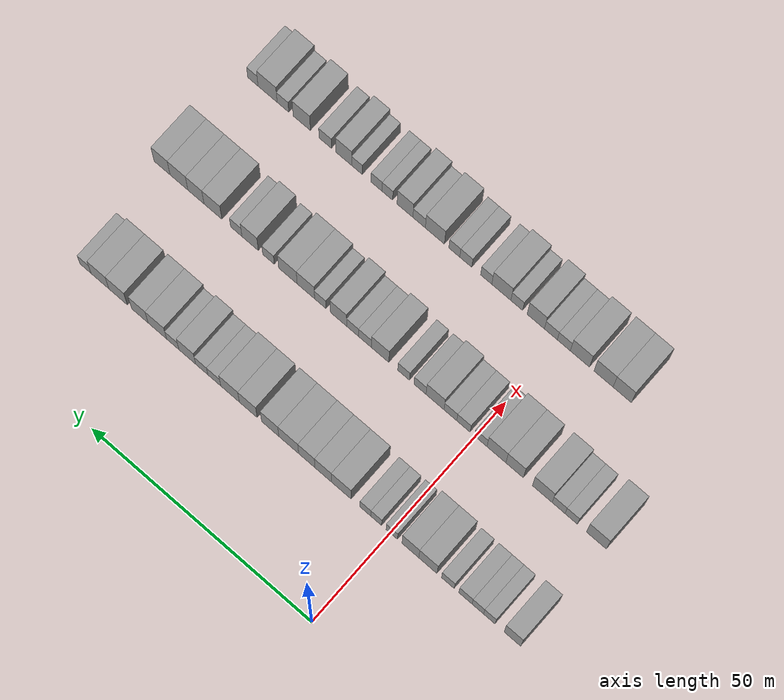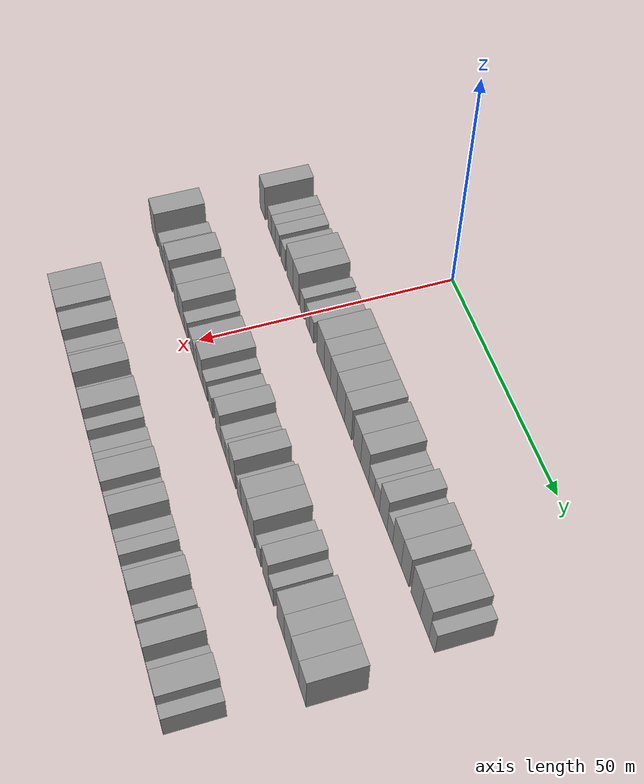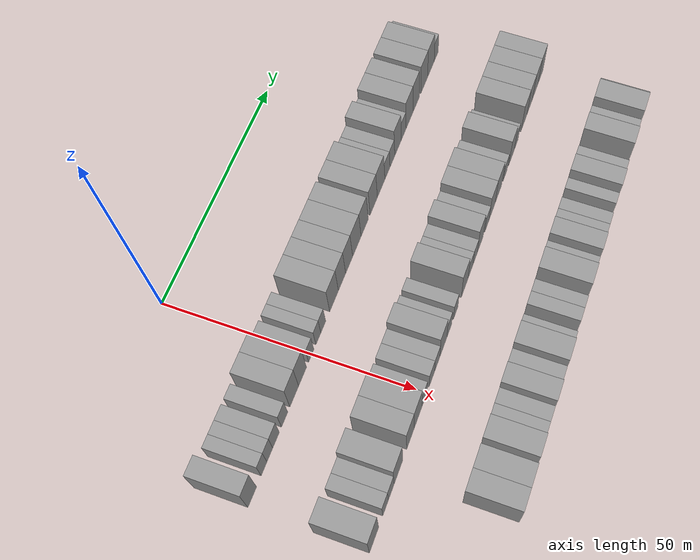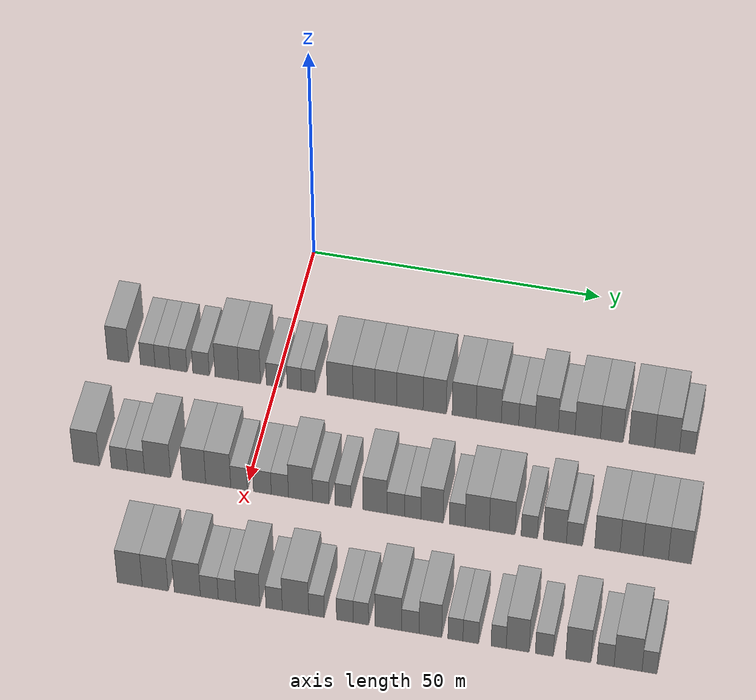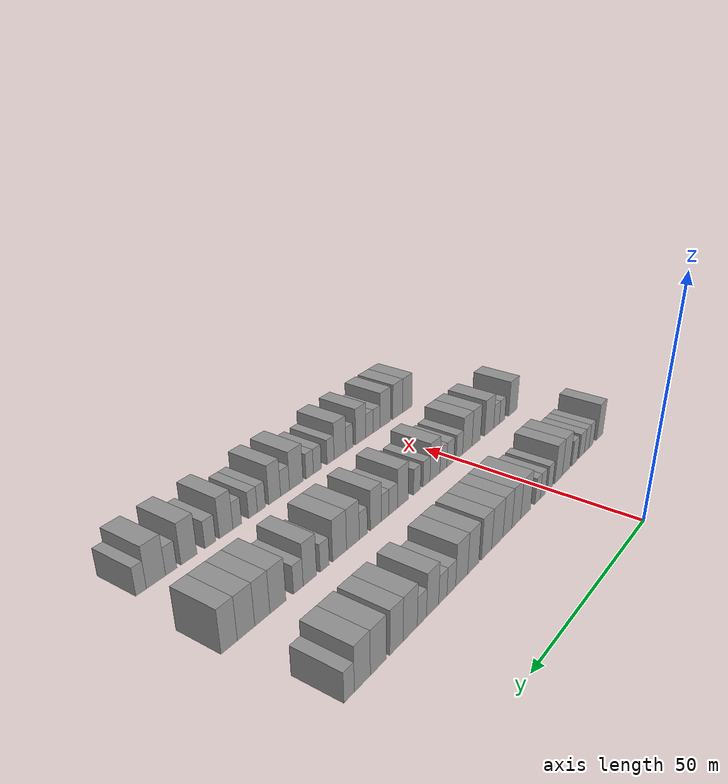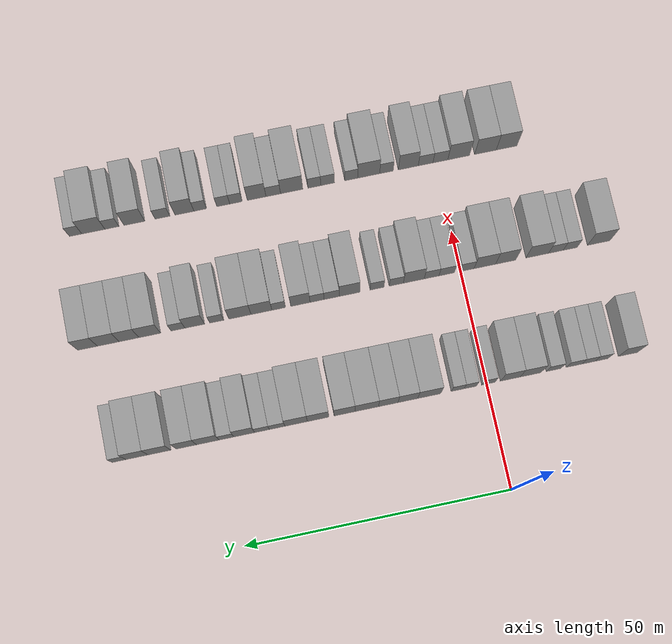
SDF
<sdf version="1.6">
 <world name="default">
  <model name="building_89">
   <static>1</static>
   <pose>25.0000 -27.1671 0 0.000000 0.000000 0.000000</pose>
   <link name="link">
    <pose>0 0 4.50 0 0 0</pose>
    <collision name="collision"><geometry><box><size>10.0000 3.6957 9.0000</size></box></geometry></collision>
    <visual name="visual">
     <cast_shadows>0</cast_shadows>
     <geometry><box><size>10.0000 3.6957 9.0000</size></box></geometry>
     <material>
      <script>
       <uri>model://grey_wall/materials/scripts</uri>
       <uri>model://grey_wall/materials/textures</uri>
       <name>vrc/grey_wall</name>
      </script>
     </material>
    </visual>
   </link>
  </model>
  <model name="building_90">
   <static>1</static>
   <pose>25.0000 -22.0524 0 0.000000 0.000000 0.000000</pose>
   <link name="link">
    <pose>0 0 3.00 0 0 0</pose>
    <collision name="collision"><geometry><box><size>10.0000 2.5336 6.0000</size></box></geometry></collision>
    <visual name="visual">
     <cast_shadows>0</cast_shadows>
     <geometry><box><size>10.0000 2.5336 6.0000</size></box></geometry>
     <material>
      <script>
       <uri>model://grey_wall/materials/scripts</uri>
       <uri>model://grey_wall/materials/textures</uri>
       <name>vrc/grey_wall</name>
      </script>
     </material>
    </visual>
   </link>
  </model>
  <model name="building_91">
   <static>1</static>
   <pose>25.0000 -19.4993 0 0.000000 0.000000 0.000000</pose>
   <link name="link">
    <pose>0 0 3.00 0 0 0</pose>
    <collision name="collision"><geometry><box><size>10.0000 2.5726 6.0000</size></box></geometry></collision>
    <visual name="visual">
     <cast_shadows>0</cast_shadows>
     <geometry><box><size>10.0000 2.5726 6.0000</size></box></geometry>
     <material>
      <script>
       <uri>model://grey_wall/materials/scripts</uri>
       <uri>model://grey_wall/materials/textures</uri>
       <name>vrc/grey_wall</name>
      </script>
     </material>
    </visual>
   </link>
  </model>
  <model name="building_92">
   <static>1</static>
   <pose>25.0000 -16.7391 0 0.000000 0.000000 0.000000</pose>
   <link name="link">
    <pose>0 0 3.00 0 0 0</pose>
    <collision name="collision"><geometry><box><size>10.0000 2.9478 6.0000</size></box></geometry></collision>
    <visual name="visual">
     <cast_shadows>0</cast_shadows>
     <geometry><box><size>10.0000 2.9478 6.0000</size></box></geometry>
     <material>
      <script>
       <uri>model://grey_wall/materials/scripts</uri>
       <uri>model://grey_wall/materials/textures</uri>
       <name>vrc/grey_wall</name>
      </script>
     </material>
    </visual>
   </link>
  </model>
  <model name="building_93">
   <static>1</static>
   <pose>25.0000 -12.8427 0 0.000000 0.000000 0.000000</pose>
   <link name="link">
    <pose>0 0 3.00 0 0 0</pose>
    <collision name="collision"><geometry><box><size>10.0000 2.8451 6.0000</size></box></geometry></collision>
    <visual name="visual">
     <cast_shadows>0</cast_shadows>
     <geometry><box><size>10.0000 2.8451 6.0000</size></box></geometry>
     <material>
      <script>
       <uri>model://grey_wall/materials/scripts</uri>
       <uri>model://grey_wall/materials/textures</uri>
       <name>vrc/grey_wall</name>
      </script>
     </material>
    </visual>
   </link>
  </model>
  <model name="building_94">
   <static>1</static>
   <pose>25.0000 -8.3882 0 0.000000 0.000000 0.000000</pose>
   <link name="link">
    <pose>0 0 4.50 0 0 0</pose>
    <collision name="collision"><geometry><box><size>10.0000 4.0640 9.0000</size></box></geometry></collision>
    <visual name="visual">
     <cast_shadows>0</cast_shadows>
     <geometry><box><size>10.0000 4.0640 9.0000</size></box></geometry>
     <material>
      <script>
       <uri>model://grey_wall/materials/scripts</uri>
       <uri>model://grey_wall/materials/textures</uri>
       <name>vrc/grey_wall</name>
      </script>
     </material>
    </visual>
   </link>
  </model>
  <model name="building_95">
   <static>1</static>
   <pose>25.0000 -4.4784 0 0.000000 0.000000 0.000000</pose>
   <link name="link">
    <pose>0 0 4.50 0 0 0</pose>
    <collision name="collision"><geometry><box><size>10.0000 3.7555 9.0000</size></box></geometry></collision>
    <visual name="visual">
     <cast_shadows>0</cast_shadows>
     <geometry><box><size>10.0000 3.7555 9.0000</size></box></geometry>
     <material>
      <script>
       <uri>model://grey_wall/materials/scripts</uri>
       <uri>model://grey_wall/materials/textures</uri>
       <name>vrc/grey_wall</name>
      </script>
     </material>
    </visual>
   </link>
  </model>
  <model name="building_96">
   <static>1</static>
   <pose>25.0000 -0.3151 0 0.000000 0.000000 0.000000</pose>
   <link name="link">
    <pose>0 0 3.00 0 0 0</pose>
    <collision name="collision"><geometry><box><size>10.0000 2.5711 6.0000</size></box></geometry></collision>
    <visual name="visual">
     <cast_shadows>0</cast_shadows>
     <geometry><box><size>10.0000 2.5711 6.0000</size></box></geometry>
     <material>
      <script>
       <uri>model://grey_wall/materials/scripts</uri>
       <uri>model://grey_wall/materials/textures</uri>
       <name>vrc/grey_wall</name>
      </script>
     </material>
    </visual>
   </link>
  </model>
  <model name="building_97">
   <static>1</static>
   <pose>25.0000 3.1766 0 0.000000 0.000000 0.000000</pose>
   <link name="link">
    <pose>0 0 3.00 0 0 0</pose>
    <collision name="collision"><geometry><box><size>10.0000 2.4122 6.0000</size></box></geometry></collision>
    <visual name="visual">
     <cast_shadows>0</cast_shadows>
     <geometry><box><size>10.0000 2.4122 6.0000</size></box></geometry>
     <material>
      <script>
       <uri>model://grey_wall/materials/scripts</uri>
       <uri>model://grey_wall/materials/textures</uri>
       <name>vrc/grey_wall</name>
      </script>
     </material>
    </visual>
   </link>
  </model>
  <model name="building_98">
   <static>1</static>
   <pose>25.0000 5.5967 0 0.000000 0.000000 0.000000</pose>
   <link name="link">
    <pose>0 0 3.00 0 0 0</pose>
    <collision name="collision"><geometry><box><size>10.0000 2.4280 6.0000</size></box></geometry></collision>
    <visual name="visual">
     <cast_shadows>0</cast_shadows>
     <geometry><box><size>10.0000 2.4280 6.0000</size></box></geometry>
     <material>
      <script>
       <uri>model://grey_wall/materials/scripts</uri>
       <uri>model://grey_wall/materials/textures</uri>
       <name>vrc/grey_wall</name>
      </script>
     </material>
    </visual>
   </link>
  </model>
  <model name="building_99">
   <static>1</static>
   <pose>25.0000 11.0182 0 0.000000 0.000000 0.000000</pose>
   <link name="link">
    <pose>0 0 4.50 0 0 0</pose>
    <collision name="collision"><geometry><box><size>10.0000 4.4150 9.0000</size></box></geometry></collision>
    <visual name="visual">
     <cast_shadows>0</cast_shadows>
     <geometry><box><size>10.0000 4.4150 9.0000</size></box></geometry>
     <material>
      <script>
       <uri>model://grey_wall/materials/scripts</uri>
       <uri>model://grey_wall/materials/textures</uri>
       <name>vrc/grey_wall</name>
      </script>
     </material>
    </visual>
   </link>
  </model>
  <model name="building_100">
   <static>1</static>
   <pose>25.0000 15.1032 0 0.000000 0.000000 0.000000</pose>
   <link name="link">
    <pose>0 0 4.50 0 0 0</pose>
    <collision name="collision"><geometry><box><size>10.0000 3.7549 9.0000</size></box></geometry></collision>
    <visual name="visual">
     <cast_shadows>0</cast_shadows>
     <geometry><box><size>10.0000 3.7549 9.0000</size></box></geometry>
     <material>
      <script>
       <uri>model://grey_wall/materials/scripts</uri>
       <uri>model://grey_wall/materials/textures</uri>
       <name>vrc/grey_wall</name>
      </script>
     </material>
    </visual>
   </link>
  </model>
  <model name="building_101">
   <static>1</static>
   <pose>25.0000 18.8308 0 0.000000 0.000000 0.000000</pose>
   <link name="link">
    <pose>0 0 4.50 0 0 0</pose>
    <collision name="collision"><geometry><box><size>10.0000 3.7003 9.0000</size></box></geometry></collision>
    <visual name="visual">
     <cast_shadows>0</cast_shadows>
     <geometry><box><size>10.0000 3.7003 9.0000</size></box></geometry>
     <material>
      <script>
       <uri>model://grey_wall/materials/scripts</uri>
       <uri>model://grey_wall/materials/textures</uri>
       <name>vrc/grey_wall</name>
      </script>
     </material>
    </visual>
   </link>
  </model>
  <model name="building_102">
   <static>1</static>
   <pose>25.0000 22.9225 0 0.000000 0.000000 0.000000</pose>
   <link name="link">
    <pose>0 0 4.50 0 0 0</pose>
    <collision name="collision"><geometry><box><size>10.0000 4.4832 9.0000</size></box></geometry></collision>
    <visual name="visual">
     <cast_shadows>0</cast_shadows>
     <geometry><box><size>10.0000 4.4832 9.0000</size></box></geometry>
     <material>
      <script>
       <uri>model://grey_wall/materials/scripts</uri>
       <uri>model://grey_wall/materials/textures</uri>
       <name>vrc/grey_wall</name>
      </script>
     </material>
    </visual>
   </link>
  </model>
  <model name="building_103">
   <static>1</static>
   <pose>25.0000 27.1284 0 0.000000 0.000000 0.000000</pose>
   <link name="link">
    <pose>0 0 4.50 0 0 0</pose>
    <collision name="collision"><geometry><box><size>10.0000 3.9285 9.0000</size></box></geometry></collision>
    <visual name="visual">
     <cast_shadows>0</cast_shadows>
     <geometry><box><size>10.0000 3.9285 9.0000</size></box></geometry>
     <material>
      <script>
       <uri>model://grey_wall/materials/scripts</uri>
       <uri>model://grey_wall/materials/textures</uri>
       <name>vrc/grey_wall</name>
      </script>
     </material>
    </visual>
   </link>
  </model>
  <model name="building_104">
   <static>1</static>
   <pose>25.0000 32.1212 0 0.000000 0.000000 0.000000</pose>
   <link name="link">
    <pose>0 0 4.50 0 0 0</pose>
    <collision name="collision"><geometry><box><size>10.0000 4.0571 9.0000</size></box></geometry></collision>
    <visual name="visual">
     <cast_shadows>0</cast_shadows>
     <geometry><box><size>10.0000 4.0571 9.0000</size></box></geometry>
     <material>
      <script>
       <uri>model://grey_wall/materials/scripts</uri>
       <uri>model://grey_wall/materials/textures</uri>
       <name>vrc/grey_wall</name>
      </script>
     </material>
    </visual>
   </link>
  </model>
  <model name="building_105">
   <static>1</static>
   <pose>25.0000 36.2793 0 0.000000 0.000000 0.000000</pose>
   <link name="link">
    <pose>0 0 4.50 0 0 0</pose>
    <collision name="collision"><geometry><box><size>10.0000 4.2591 9.0000</size></box></geometry></collision>
    <visual name="visual">
     <cast_shadows>0</cast_shadows>
     <geometry><box><size>10.0000 4.2591 9.0000</size></box></geometry>
     <material>
      <script>
       <uri>model://grey_wall/materials/scripts</uri>
       <uri>model://grey_wall/materials/textures</uri>
       <name>vrc/grey_wall</name>
      </script>
     </material>
    </visual>
   </link>
  </model>
  <model name="building_106">
   <static>1</static>
   <pose>25.0000 39.8754 0 0.000000 0.000000 0.000000</pose>
   <link name="link">
    <pose>0 0 3.00 0 0 0</pose>
    <collision name="collision"><geometry><box><size>10.0000 2.9330 6.0000</size></box></geometry></collision>
    <visual name="visual">
     <cast_shadows>0</cast_shadows>
     <geometry><box><size>10.0000 2.9330 6.0000</size></box></geometry>
     <material>
      <script>
       <uri>model://grey_wall/materials/scripts</uri>
       <uri>model://grey_wall/materials/textures</uri>
       <name>vrc/grey_wall</name>
      </script>
     </material>
    </visual>
   </link>
  </model>
  <model name="building_107">
   <static>1</static>
   <pose>25.0000 42.7324 0 0.000000 0.000000 0.000000</pose>
   <link name="link">
    <pose>0 0 3.00 0 0 0</pose>
    <collision name="collision"><geometry><box><size>10.0000 2.7810 6.0000</size></box></geometry></collision>
    <visual name="visual">
     <cast_shadows>0</cast_shadows>
     <geometry><box><size>10.0000 2.7810 6.0000</size></box></geometry>
     <material>
      <script>
       <uri>model://grey_wall/materials/scripts</uri>
       <uri>model://grey_wall/materials/textures</uri>
       <name>vrc/grey_wall</name>
      </script>
     </material>
    </visual>
   </link>
  </model>
  <model name="building_108">
   <static>1</static>
   <pose>25.0000 46.0612 0 0.000000 0.000000 0.000000</pose>
   <link name="link">
    <pose>0 0 4.50 0 0 0</pose>
    <collision name="collision"><geometry><box><size>10.0000 3.8766 9.0000</size></box></geometry></collision>
    <visual name="visual">
     <cast_shadows>0</cast_shadows>
     <geometry><box><size>10.0000 3.8766 9.0000</size></box></geometry>
     <material>
      <script>
       <uri>model://grey_wall/materials/scripts</uri>
       <uri>model://grey_wall/materials/textures</uri>
       <name>vrc/grey_wall</name>
      </script>
     </material>
    </visual>
   </link>
  </model>
  <model name="building_109">
   <static>1</static>
   <pose>25.0000 49.4147 0 0.000000 0.000000 0.000000</pose>
   <link name="link">
    <pose>0 0 3.00 0 0 0</pose>
    <collision name="collision"><geometry><box><size>10.0000 2.8305 6.0000</size></box></geometry></collision>
    <visual name="visual">
     <cast_shadows>0</cast_shadows>
     <geometry><box><size>10.0000 2.8305 6.0000</size></box></geometry>
     <material>
      <script>
       <uri>model://grey_wall/materials/scripts</uri>
       <uri>model://grey_wall/materials/textures</uri>
       <name>vrc/grey_wall</name>
      </script>
     </material>
    </visual>
   </link>
  </model>
  <model name="building_110">
   <static>1</static>
   <pose>25.0000 52.9545 0 0.000000 0.000000 0.000000</pose>
   <link name="link">
    <pose>0 0 4.50 0 0 0</pose>
    <collision name="collision"><geometry><box><size>10.0000 4.2490 9.0000</size></box></geometry></collision>
    <visual name="visual">
     <cast_shadows>0</cast_shadows>
     <geometry><box><size>10.0000 4.2490 9.0000</size></box></geometry>
     <material>
      <script>
       <uri>model://grey_wall/materials/scripts</uri>
       <uri>model://grey_wall/materials/textures</uri>
       <name>vrc/grey_wall</name>
      </script>
     </material>
    </visual>
   </link>
  </model>
  <model name="building_111">
   <static>1</static>
   <pose>25.0000 56.9843 0 0.000000 0.000000 0.000000</pose>
   <link name="link">
    <pose>0 0 4.50 0 0 0</pose>
    <collision name="collision"><geometry><box><size>10.0000 3.8107 9.0000</size></box></geometry></collision>
    <visual name="visual">
     <cast_shadows>0</cast_shadows>
     <geometry><box><size>10.0000 3.8107 9.0000</size></box></geometry>
     <material>
      <script>
       <uri>model://grey_wall/materials/scripts</uri>
       <uri>model://grey_wall/materials/textures</uri>
       <name>vrc/grey_wall</name>
      </script>
     </material>
    </visual>
   </link>
  </model>
  <model name="building_112">
   <static>1</static>
   <pose>25.0000 62.0280 0 0.000000 0.000000 0.000000</pose>
   <link name="link">
    <pose>0 0 4.50 0 0 0</pose>
    <collision name="collision"><geometry><box><size>10.0000 4.2765 9.0000</size></box></geometry></collision>
    <visual name="visual">
     <cast_shadows>0</cast_shadows>
     <geometry><box><size>10.0000 4.2765 9.0000</size></box></geometry>
     <material>
      <script>
       <uri>model://grey_wall/materials/scripts</uri>
       <uri>model://grey_wall/materials/textures</uri>
       <name>vrc/grey_wall</name>
      </script>
     </material>
    </visual>
   </link>
  </model>
  <model name="building_113">
   <static>1</static>
   <pose>25.0000 66.2353 0 0.000000 0.000000 0.000000</pose>
   <link name="link">
    <pose>0 0 4.50 0 0 0</pose>
    <collision name="collision"><geometry><box><size>10.0000 4.1381 9.0000</size></box></geometry></collision>
    <visual name="visual">
     <cast_shadows>0</cast_shadows>
     <geometry><box><size>10.0000 4.1381 9.0000</size></box></geometry>
     <material>
      <script>
       <uri>model://grey_wall/materials/scripts</uri>
       <uri>model://grey_wall/materials/textures</uri>
       <name>vrc/grey_wall</name>
      </script>
     </material>
    </visual>
   </link>
  </model>
  <model name="building_114">
   <static>1</static>
   <pose>25.0000 69.6113 0 0.000000 0.000000 0.000000</pose>
   <link name="link">
    <pose>0 0 3.00 0 0 0</pose>
    <collision name="collision"><geometry><box><size>10.0000 2.6140 6.0000</size></box></geometry></collision>
    <visual name="visual">
     <cast_shadows>0</cast_shadows>
     <geometry><box><size>10.0000 2.6140 6.0000</size></box></geometry>
     <material>
      <script>
       <uri>model://grey_wall/materials/scripts</uri>
       <uri>model://grey_wall/materials/textures</uri>
       <name>vrc/grey_wall</name>
      </script>
     </material>
    </visual>
   </link>
  </model>
  <model name="building_278">
   <static>1</static>
   <pose>47.0000 -26.9733 0 0.000000 0.000000 0.000000</pose>
   <link name="link">
    <pose>0 0 4.50 0 0 0</pose>
    <collision name="collision"><geometry><box><size>10.0000 4.4343 9.0000</size></box></geometry></collision>
    <visual name="visual">
     <cast_shadows>0</cast_shadows>
     <geometry><box><size>10.0000 4.4343 9.0000</size></box></geometry>
     <material>
      <script>
       <uri>model://grey_wall/materials/scripts</uri>
       <uri>model://grey_wall/materials/textures</uri>
       <name>vrc/grey_wall</name>
      </script>
     </material>
    </visual>
   </link>
  </model>
  <model name="building_279">
   <static>1</static>
   <pose>47.0000 -21.3816 0 0.000000 0.000000 0.000000</pose>
   <link name="link">
    <pose>0 0 3.00 0 0 0</pose>
    <collision name="collision"><geometry><box><size>10.0000 2.7491 6.0000</size></box></geometry></collision>
    <visual name="visual">
     <cast_shadows>0</cast_shadows>
     <geometry><box><size>10.0000 2.7491 6.0000</size></box></geometry>
     <material>
      <script>
       <uri>model://grey_wall/materials/scripts</uri>
       <uri>model://grey_wall/materials/textures</uri>
       <name>vrc/grey_wall</name>
      </script>
     </material>
    </visual>
   </link>
  </model>
  <model name="building_280">
   <static>1</static>
   <pose>47.0000 -18.5698 0 0.000000 0.000000 0.000000</pose>
   <link name="link">
    <pose>0 0 3.00 0 0 0</pose>
    <collision name="collision"><geometry><box><size>10.0000 2.8746 6.0000</size></box></geometry></collision>
    <visual name="visual">
     <cast_shadows>0</cast_shadows>
     <geometry><box><size>10.0000 2.8746 6.0000</size></box></geometry>
     <material>
      <script>
       <uri>model://grey_wall/materials/scripts</uri>
       <uri>model://grey_wall/materials/textures</uri>
       <name>vrc/grey_wall</name>
      </script>
     </material>
    </visual>
   </link>
  </model>
  <model name="building_281">
   <static>1</static>
   <pose>47.0000 -14.9284 0 0.000000 0.000000 0.000000</pose>
   <link name="link">
    <pose>0 0 4.50 0 0 0</pose>
    <collision name="collision"><geometry><box><size>10.0000 4.4082 9.0000</size></box></geometry></collision>
    <visual name="visual">
     <cast_shadows>0</cast_shadows>
     <geometry><box><size>10.0000 4.4082 9.0000</size></box></geometry>
     <material>
      <script>
       <uri>model://grey_wall/materials/scripts</uri>
       <uri>model://grey_wall/materials/textures</uri>
       <name>vrc/grey_wall</name>
      </script>
     </material>
    </visual>
   </link>
  </model>
  <model name="building_282">
   <static>1</static>
   <pose>47.0000 -8.7660 0 0.000000 0.000000 0.000000</pose>
   <link name="link">
    <pose>0 0 4.50 0 0 0</pose>
    <collision name="collision"><geometry><box><size>10.0000 3.9165 9.0000</size></box></geometry></collision>
    <visual name="visual">
     <cast_shadows>0</cast_shadows>
     <geometry><box><size>10.0000 3.9165 9.0000</size></box></geometry>
     <material>
      <script>
       <uri>model://grey_wall/materials/scripts</uri>
       <uri>model://grey_wall/materials/textures</uri>
       <name>vrc/grey_wall</name>
      </script>
     </material>
    </visual>
   </link>
  </model>
  <model name="building_283">
   <static>1</static>
   <pose>47.0000 -4.6960 0 0.000000 0.000000 0.000000</pose>
   <link name="link">
    <pose>0 0 4.50 0 0 0</pose>
    <collision name="collision"><geometry><box><size>10.0000 4.2235 9.0000</size></box></geometry></collision>
    <visual name="visual">
     <cast_shadows>0</cast_shadows>
     <geometry><box><size>10.0000 4.2235 9.0000</size></box></geometry>
     <material>
      <script>
       <uri>model://grey_wall/materials/scripts</uri>
       <uri>model://grey_wall/materials/textures</uri>
       <name>vrc/grey_wall</name>
      </script>
     </material>
    </visual>
   </link>
  </model>
  <model name="building_284">
   <static>1</static>
   <pose>47.0000 -1.1816 0 0.000000 0.000000 0.000000</pose>
   <link name="link">
    <pose>0 0 3.00 0 0 0</pose>
    <collision name="collision"><geometry><box><size>10.0000 2.8053 6.0000</size></box></geometry></collision>
    <visual name="visual">
     <cast_shadows>0</cast_shadows>
     <geometry><box><size>10.0000 2.8053 6.0000</size></box></geometry>
     <material>
      <script>
       <uri>model://grey_wall/materials/scripts</uri>
       <uri>model://grey_wall/materials/textures</uri>
       <name>vrc/grey_wall</name>
      </script>
     </material>
    </visual>
   </link>
  </model>
  <model name="building_285">
   <static>1</static>
   <pose>47.0000 2.7196 0 0.000000 0.000000 0.000000</pose>
   <link name="link">
    <pose>0 0 3.00 0 0 0</pose>
    <collision name="collision"><geometry><box><size>10.0000 2.9971 6.0000</size></box></geometry></collision>
    <visual name="visual">
     <cast_shadows>0</cast_shadows>
     <geometry><box><size>10.0000 2.9971 6.0000</size></box></geometry>
     <material>
      <script>
       <uri>model://grey_wall/materials/scripts</uri>
       <uri>model://grey_wall/materials/textures</uri>
       <name>vrc/grey_wall</name>
      </script>
     </material>
    </visual>
   </link>
  </model>
  <model name="building_286">
   <static>1</static>
   <pose>47.0000 5.6546 0 0.000000 0.000000 0.000000</pose>
   <link name="link">
    <pose>0 0 3.00 0 0 0</pose>
    <collision name="collision"><geometry><box><size>10.0000 2.8729 6.0000</size></box></geometry></collision>
    <visual name="visual">
     <cast_shadows>0</cast_shadows>
     <geometry><box><size>10.0000 2.8729 6.0000</size></box></geometry>
     <material>
      <script>
       <uri>model://grey_wall/materials/scripts</uri>
       <uri>model://grey_wall/materials/textures</uri>
       <name>vrc/grey_wall</name>
      </script>
     </material>
    </visual>
   </link>
  </model>
  <model name="building_287">
   <static>1</static>
   <pose>47.0000 9.1138 0 0.000000 0.000000 0.000000</pose>
   <link name="link">
    <pose>0 0 4.50 0 0 0</pose>
    <collision name="collision"><geometry><box><size>10.0000 4.0455 9.0000</size></box></geometry></collision>
    <visual name="visual">
     <cast_shadows>0</cast_shadows>
     <geometry><box><size>10.0000 4.0455 9.0000</size></box></geometry>
     <material>
      <script>
       <uri>model://grey_wall/materials/scripts</uri>
       <uri>model://grey_wall/materials/textures</uri>
       <name>vrc/grey_wall</name>
      </script>
     </material>
    </visual>
   </link>
  </model>
  <model name="building_288">
   <static>1</static>
   <pose>47.0000 12.5057 0 0.000000 0.000000 0.000000</pose>
   <link name="link">
    <pose>0 0 3.00 0 0 0</pose>
    <collision name="collision"><geometry><box><size>10.0000 2.7384 6.0000</size></box></geometry></collision>
    <visual name="visual">
     <cast_shadows>0</cast_shadows>
     <geometry><box><size>10.0000 2.7384 6.0000</size></box></geometry>
     <material>
      <script>
       <uri>model://grey_wall/materials/scripts</uri>
       <uri>model://grey_wall/materials/textures</uri>
       <name>vrc/grey_wall</name>
      </script>
     </material>
    </visual>
   </link>
  </model>
  <model name="building_289">
   <static>1</static>
   <pose>47.0000 16.2146 0 0.000000 0.000000 0.000000</pose>
   <link name="link">
    <pose>0 0 3.00 0 0 0</pose>
    <collision name="collision"><geometry><box><size>10.0000 2.6794 6.0000</size></box></geometry></collision>
    <visual name="visual">
     <cast_shadows>0</cast_shadows>
     <geometry><box><size>10.0000 2.6794 6.0000</size></box></geometry>
     <material>
      <script>
       <uri>model://grey_wall/materials/scripts</uri>
       <uri>model://grey_wall/materials/textures</uri>
       <name>vrc/grey_wall</name>
      </script>
     </material>
    </visual>
   </link>
  </model>
  <model name="building_290">
   <static>1</static>
   <pose>47.0000 21.5307 0 0.000000 0.000000 0.000000</pose>
   <link name="link">
    <pose>0 0 4.50 0 0 0</pose>
    <collision name="collision"><geometry><box><size>10.0000 3.9529 9.0000</size></box></geometry></collision>
    <visual name="visual">
     <cast_shadows>0</cast_shadows>
     <geometry><box><size>10.0000 3.9529 9.0000</size></box></geometry>
     <material>
      <script>
       <uri>model://grey_wall/materials/scripts</uri>
       <uri>model://grey_wall/materials/textures</uri>
       <name>vrc/grey_wall</name>
      </script>
     </material>
    </visual>
   </link>
  </model>
  <model name="building_291">
   <static>1</static>
   <pose>47.0000 24.9826 0 0.000000 0.000000 0.000000</pose>
   <link name="link">
    <pose>0 0 3.00 0 0 0</pose>
    <collision name="collision"><geometry><box><size>10.0000 2.9509 6.0000</size></box></geometry></collision>
    <visual name="visual">
     <cast_shadows>0</cast_shadows>
     <geometry><box><size>10.0000 2.9509 6.0000</size></box></geometry>
     <material>
      <script>
       <uri>model://grey_wall/materials/scripts</uri>
       <uri>model://grey_wall/materials/textures</uri>
       <name>vrc/grey_wall</name>
      </script>
     </material>
    </visual>
   </link>
  </model>
  <model name="building_292">
   <static>1</static>
   <pose>47.0000 27.8058 0 0.000000 0.000000 0.000000</pose>
   <link name="link">
    <pose>0 0 3.00 0 0 0</pose>
    <collision name="collision"><geometry><box><size>10.0000 2.6955 6.0000</size></box></geometry></collision>
    <visual name="visual">
     <cast_shadows>0</cast_shadows>
     <geometry><box><size>10.0000 2.6955 6.0000</size></box></geometry>
     <material>
      <script>
       <uri>model://grey_wall/materials/scripts</uri>
       <uri>model://grey_wall/materials/textures</uri>
       <name>vrc/grey_wall</name>
      </script>
     </material>
    </visual>
   </link>
  </model>
  <model name="building_293">
   <static>1</static>
   <pose>47.0000 31.0034 0 0.000000 0.000000 0.000000</pose>
   <link name="link">
    <pose>0 0 4.50 0 0 0</pose>
    <collision name="collision"><geometry><box><size>10.0000 3.6997 9.0000</size></box></geometry></collision>
    <visual name="visual">
     <cast_shadows>0</cast_shadows>
     <geometry><box><size>10.0000 3.6997 9.0000</size></box></geometry>
     <material>
      <script>
       <uri>model://grey_wall/materials/scripts</uri>
       <uri>model://grey_wall/materials/textures</uri>
       <name>vrc/grey_wall</name>
      </script>
     </material>
    </visual>
   </link>
  </model>
  <model name="building_294">
   <static>1</static>
   <pose>47.0000 35.1653 0 0.000000 0.000000 0.000000</pose>
   <link name="link">
    <pose>0 0 3.00 0 0 0</pose>
    <collision name="collision"><geometry><box><size>10.0000 2.6241 6.0000</size></box></geometry></collision>
    <visual name="visual">
     <cast_shadows>0</cast_shadows>
     <geometry><box><size>10.0000 2.6241 6.0000</size></box></geometry>
     <material>
      <script>
       <uri>model://grey_wall/materials/scripts</uri>
       <uri>model://grey_wall/materials/textures</uri>
       <name>vrc/grey_wall</name>
      </script>
     </material>
    </visual>
   </link>
  </model>
  <model name="building_295">
   <static>1</static>
   <pose>47.0000 38.4798 0 0.000000 0.000000 0.000000</pose>
   <link name="link">
    <pose>0 0 4.50 0 0 0</pose>
    <collision name="collision"><geometry><box><size>10.0000 4.0048 9.0000</size></box></geometry></collision>
    <visual name="visual">
     <cast_shadows>0</cast_shadows>
     <geometry><box><size>10.0000 4.0048 9.0000</size></box></geometry>
     <material>
      <script>
       <uri>model://grey_wall/materials/scripts</uri>
       <uri>model://grey_wall/materials/textures</uri>
       <name>vrc/grey_wall</name>
      </script>
     </material>
    </visual>
   </link>
  </model>
  <model name="building_296">
   <static>1</static>
   <pose>47.0000 42.6045 0 0.000000 0.000000 0.000000</pose>
   <link name="link">
    <pose>0 0 4.50 0 0 0</pose>
    <collision name="collision"><geometry><box><size>10.0000 4.2446 9.0000</size></box></geometry></collision>
    <visual name="visual">
     <cast_shadows>0</cast_shadows>
     <geometry><box><size>10.0000 4.2446 9.0000</size></box></geometry>
     <material>
      <script>
       <uri>model://grey_wall/materials/scripts</uri>
       <uri>model://grey_wall/materials/textures</uri>
       <name>vrc/grey_wall</name>
      </script>
     </material>
    </visual>
   </link>
  </model>
  <model name="building_297">
   <static>1</static>
   <pose>47.0000 47.0649 0 0.000000 0.000000 0.000000</pose>
   <link name="link">
    <pose>0 0 3.00 0 0 0</pose>
    <collision name="collision"><geometry><box><size>10.0000 2.6762 6.0000</size></box></geometry></collision>
    <visual name="visual">
     <cast_shadows>0</cast_shadows>
     <geometry><box><size>10.0000 2.6762 6.0000</size></box></geometry>
     <material>
      <script>
       <uri>model://grey_wall/materials/scripts</uri>
       <uri>model://grey_wall/materials/textures</uri>
       <name>vrc/grey_wall</name>
      </script>
     </material>
    </visual>
   </link>
  </model>
  <model name="building_298">
   <static>1</static>
   <pose>47.0000 51.2866 0 0.000000 0.000000 0.000000</pose>
   <link name="link">
    <pose>0 0 4.50 0 0 0</pose>
    <collision name="collision"><geometry><box><size>10.0000 3.7672 9.0000</size></box></geometry></collision>
    <visual name="visual">
     <cast_shadows>0</cast_shadows>
     <geometry><box><size>10.0000 3.7672 9.0000</size></box></geometry>
     <material>
      <script>
       <uri>model://grey_wall/materials/scripts</uri>
       <uri>model://grey_wall/materials/textures</uri>
       <name>vrc/grey_wall</name>
      </script>
     </material>
    </visual>
   </link>
  </model>
  <model name="building_299">
   <static>1</static>
   <pose>47.0000 54.4894 0 0.000000 0.000000 0.000000</pose>
   <link name="link">
    <pose>0 0 3.00 0 0 0</pose>
    <collision name="collision"><geometry><box><size>10.0000 2.6385 6.0000</size></box></geometry></collision>
    <visual name="visual">
     <cast_shadows>0</cast_shadows>
     <geometry><box><size>10.0000 2.6385 6.0000</size></box></geometry>
     <material>
      <script>
       <uri>model://grey_wall/materials/scripts</uri>
       <uri>model://grey_wall/materials/textures</uri>
       <name>vrc/grey_wall</name>
      </script>
     </material>
    </visual>
   </link>
  </model>
  <model name="building_300">
   <static>1</static>
   <pose>47.0000 59.8786 0 0.000000 0.000000 0.000000</pose>
   <link name="link">
    <pose>0 0 4.50 0 0 0</pose>
    <collision name="collision"><geometry><box><size>10.0000 4.1399 9.0000</size></box></geometry></collision>
    <visual name="visual">
     <cast_shadows>0</cast_shadows>
     <geometry><box><size>10.0000 4.1399 9.0000</size></box></geometry>
     <material>
      <script>
       <uri>model://grey_wall/materials/scripts</uri>
       <uri>model://grey_wall/materials/textures</uri>
       <name>vrc/grey_wall</name>
      </script>
     </material>
    </visual>
   </link>
  </model>
  <model name="building_301">
   <static>1</static>
   <pose>47.0000 63.8234 0 0.000000 0.000000 0.000000</pose>
   <link name="link">
    <pose>0 0 4.50 0 0 0</pose>
    <collision name="collision"><geometry><box><size>10.0000 3.7496 9.0000</size></box></geometry></collision>
    <visual name="visual">
     <cast_shadows>0</cast_shadows>
     <geometry><box><size>10.0000 3.7496 9.0000</size></box></geometry>
     <material>
      <script>
       <uri>model://grey_wall/materials/scripts</uri>
       <uri>model://grey_wall/materials/textures</uri>
       <name>vrc/grey_wall</name>
      </script>
     </material>
    </visual>
   </link>
  </model>
  <model name="building_302">
   <static>1</static>
   <pose>47.0000 67.7748 0 0.000000 0.000000 0.000000</pose>
   <link name="link">
    <pose>0 0 4.50 0 0 0</pose>
    <collision name="collision"><geometry><box><size>10.0000 4.1533 9.0000</size></box></geometry></collision>
    <visual name="visual">
     <cast_shadows>0</cast_shadows>
     <geometry><box><size>10.0000 4.1533 9.0000</size></box></geometry>
     <material>
      <script>
       <uri>model://grey_wall/materials/scripts</uri>
       <uri>model://grey_wall/materials/textures</uri>
       <name>vrc/grey_wall</name>
      </script>
     </material>
    </visual>
   </link>
  </model>
  <model name="building_303">
   <static>1</static>
   <pose>47.0000 71.7252 0 0.000000 0.000000 0.000000</pose>
   <link name="link">
    <pose>0 0 4.50 0 0 0</pose>
    <collision name="collision"><geometry><box><size>10.0000 3.7474 9.0000</size></box></geometry></collision>
    <visual name="visual">
     <cast_shadows>0</cast_shadows>
     <geometry><box><size>10.0000 3.7474 9.0000</size></box></geometry>
     <material>
      <script>
       <uri>model://grey_wall/materials/scripts</uri>
       <uri>model://grey_wall/materials/textures</uri>
       <name>vrc/grey_wall</name>
      </script>
     </material>
    </visual>
   </link>
  </model>
  <model name="building_456">
   <static>1</static>
   <pose>69.0000 -14.0839 0 0.000000 0.000000 0.000000</pose>
   <link name="link">
    <pose>0 0 4.50 0 0 0</pose>
    <collision name="collision"><geometry><box><size>10.0000 4.1106 9.0000</size></box></geometry></collision>
    <visual name="visual">
     <cast_shadows>0</cast_shadows>
     <geometry><box><size>10.0000 4.1106 9.0000</size></box></geometry>
     <material>
      <script>
       <uri>model://grey_wall/materials/scripts</uri>
       <uri>model://grey_wall/materials/textures</uri>
       <name>vrc/grey_wall</name>
      </script>
     </material>
    </visual>
   </link>
  </model>
  <model name="building_457">
   <static>1</static>
   <pose>69.0000 -9.8873 0 0.000000 0.000000 0.000000</pose>
   <link name="link">
    <pose>0 0 4.50 0 0 0</pose>
    <collision name="collision"><geometry><box><size>10.0000 4.2826 9.0000</size></box></geometry></collision>
    <visual name="visual">
     <cast_shadows>0</cast_shadows>
     <geometry><box><size>10.0000 4.2826 9.0000</size></box></geometry>
     <material>
      <script>
       <uri>model://grey_wall/materials/scripts</uri>
       <uri>model://grey_wall/materials/textures</uri>
       <name>vrc/grey_wall</name>
      </script>
     </material>
    </visual>
   </link>
  </model>
  <model name="building_458">
   <static>1</static>
   <pose>69.0000 -4.5965 0 0.000000 0.000000 0.000000</pose>
   <link name="link">
    <pose>0 0 4.50 0 0 0</pose>
    <collision name="collision"><geometry><box><size>10.0000 4.2989 9.0000</size></box></geometry></collision>
    <visual name="visual">
     <cast_shadows>0</cast_shadows>
     <geometry><box><size>10.0000 4.2989 9.0000</size></box></geometry>
     <material>
      <script>
       <uri>model://grey_wall/materials/scripts</uri>
       <uri>model://grey_wall/materials/textures</uri>
       <name>vrc/grey_wall</name>
      </script>
     </material>
    </visual>
   </link>
  </model>
  <model name="building_459">
   <static>1</static>
   <pose>69.0000 -0.9807 0 0.000000 0.000000 0.000000</pose>
   <link name="link">
    <pose>0 0 3.00 0 0 0</pose>
    <collision name="collision"><geometry><box><size>10.0000 2.9327 6.0000</size></box></geometry></collision>
    <visual name="visual">
     <cast_shadows>0</cast_shadows>
     <geometry><box><size>10.0000 2.9327 6.0000</size></box></geometry>
     <material>
      <script>
       <uri>model://grey_wall/materials/scripts</uri>
       <uri>model://grey_wall/materials/textures</uri>
       <name>vrc/grey_wall</name>
      </script>
     </material>
    </visual>
   </link>
  </model>
  <model name="building_460">
   <static>1</static>
   <pose>69.0000 1.9398 0 0.000000 0.000000 0.000000</pose>
   <link name="link">
    <pose>0 0 3.00 0 0 0</pose>
    <collision name="collision"><geometry><box><size>10.0000 2.9083 6.0000</size></box></geometry></collision>
    <visual name="visual">
     <cast_shadows>0</cast_shadows>
     <geometry><box><size>10.0000 2.9083 6.0000</size></box></geometry>
     <material>
      <script>
       <uri>model://grey_wall/materials/scripts</uri>
       <uri>model://grey_wall/materials/textures</uri>
       <name>vrc/grey_wall</name>
      </script>
     </material>
    </visual>
   </link>
  </model>
  <model name="building_461">
   <static>1</static>
   <pose>69.0000 5.3502 0 0.000000 0.000000 0.000000</pose>
   <link name="link">
    <pose>0 0 4.50 0 0 0</pose>
    <collision name="collision"><geometry><box><size>10.0000 3.9125 9.0000</size></box></geometry></collision>
    <visual name="visual">
     <cast_shadows>0</cast_shadows>
     <geometry><box><size>10.0000 3.9125 9.0000</size></box></geometry>
     <material>
      <script>
       <uri>model://grey_wall/materials/scripts</uri>
       <uri>model://grey_wall/materials/textures</uri>
       <name>vrc/grey_wall</name>
      </script>
     </material>
    </visual>
   </link>
  </model>
  <model name="building_462">
   <static>1</static>
   <pose>69.0000 9.6404 0 0.000000 0.000000 0.000000</pose>
   <link name="link">
    <pose>0 0 3.00 0 0 0</pose>
    <collision name="collision"><geometry><box><size>10.0000 2.6678 6.0000</size></box></geometry></collision>
    <visual name="visual">
     <cast_shadows>0</cast_shadows>
     <geometry><box><size>10.0000 2.6678 6.0000</size></box></geometry>
     <material>
      <script>
       <uri>model://grey_wall/materials/scripts</uri>
       <uri>model://grey_wall/materials/textures</uri>
       <name>vrc/grey_wall</name>
      </script>
     </material>
    </visual>
   </link>
  </model>
  <model name="building_463">
   <static>1</static>
   <pose>69.0000 13.1318 0 0.000000 0.000000 0.000000</pose>
   <link name="link">
    <pose>0 0 4.50 0 0 0</pose>
    <collision name="collision"><geometry><box><size>10.0000 4.3152 9.0000</size></box></geometry></collision>
    <visual name="visual">
     <cast_shadows>0</cast_shadows>
     <geometry><box><size>10.0000 4.3152 9.0000</size></box></geometry>
     <material>
      <script>
       <uri>model://grey_wall/materials/scripts</uri>
       <uri>model://grey_wall/materials/textures</uri>
       <name>vrc/grey_wall</name>
      </script>
     </material>
    </visual>
   </link>
  </model>
  <model name="building_464">
   <static>1</static>
   <pose>69.0000 16.5638 0 0.000000 0.000000 0.000000</pose>
   <link name="link">
    <pose>0 0 3.00 0 0 0</pose>
    <collision name="collision"><geometry><box><size>10.0000 2.5488 6.0000</size></box></geometry></collision>
    <visual name="visual">
     <cast_shadows>0</cast_shadows>
     <geometry><box><size>10.0000 2.5488 6.0000</size></box></geometry>
     <material>
      <script>
       <uri>model://grey_wall/materials/scripts</uri>
       <uri>model://grey_wall/materials/textures</uri>
       <name>vrc/grey_wall</name>
      </script>
     </material>
    </visual>
   </link>
  </model>
  <model name="building_465">
   <static>1</static>
   <pose>69.0000 21.1955 0 0.000000 0.000000 0.000000</pose>
   <link name="link">
    <pose>0 0 3.00 0 0 0</pose>
    <collision name="collision"><geometry><box><size>10.0000 2.7145 6.0000</size></box></geometry></collision>
    <visual name="visual">
     <cast_shadows>0</cast_shadows>
     <geometry><box><size>10.0000 2.7145 6.0000</size></box></geometry>
     <material>
      <script>
       <uri>model://grey_wall/materials/scripts</uri>
       <uri>model://grey_wall/materials/textures</uri>
       <name>vrc/grey_wall</name>
      </script>
     </material>
    </visual>
   </link>
  </model>
  <model name="building_466">
   <static>1</static>
   <pose>69.0000 23.8064 0 0.000000 0.000000 0.000000</pose>
   <link name="link">
    <pose>0 0 3.00 0 0 0</pose>
    <collision name="collision"><geometry><box><size>10.0000 2.5071 6.0000</size></box></geometry></collision>
    <visual name="visual">
     <cast_shadows>0</cast_shadows>
     <geometry><box><size>10.0000 2.5071 6.0000</size></box></geometry>
     <material>
      <script>
       <uri>model://grey_wall/materials/scripts</uri>
       <uri>model://grey_wall/materials/textures</uri>
       <name>vrc/grey_wall</name>
      </script>
     </material>
    </visual>
   </link>
  </model>
  <model name="building_467">
   <static>1</static>
   <pose>69.0000 28.2396 0 0.000000 0.000000 0.000000</pose>
   <link name="link">
    <pose>0 0 4.50 0 0 0</pose>
    <collision name="collision"><geometry><box><size>10.0000 4.3593 9.0000</size></box></geometry></collision>
    <visual name="visual">
     <cast_shadows>0</cast_shadows>
     <geometry><box><size>10.0000 4.3593 9.0000</size></box></geometry>
     <material>
      <script>
       <uri>model://grey_wall/materials/scripts</uri>
       <uri>model://grey_wall/materials/textures</uri>
       <name>vrc/grey_wall</name>
      </script>
     </material>
    </visual>
   </link>
  </model>
  <model name="building_468">
   <static>1</static>
   <pose>69.0000 31.8402 0 0.000000 0.000000 0.000000</pose>
   <link name="link">
    <pose>0 0 3.00 0 0 0</pose>
    <collision name="collision"><geometry><box><size>10.0000 2.8421 6.0000</size></box></geometry></collision>
    <visual name="visual">
     <cast_shadows>0</cast_shadows>
     <geometry><box><size>10.0000 2.8421 6.0000</size></box></geometry>
     <material>
      <script>
       <uri>model://grey_wall/materials/scripts</uri>
       <uri>model://grey_wall/materials/textures</uri>
       <name>vrc/grey_wall</name>
      </script>
     </material>
    </visual>
   </link>
  </model>
  <model name="building_469">
   <static>1</static>
   <pose>69.0000 35.0825 0 0.000000 0.000000 0.000000</pose>
   <link name="link">
    <pose>0 0 4.50 0 0 0</pose>
    <collision name="collision"><geometry><box><size>10.0000 3.6423 9.0000</size></box></geometry></collision>
    <visual name="visual">
     <cast_shadows>0</cast_shadows>
     <geometry><box><size>10.0000 3.6423 9.0000</size></box></geometry>
     <material>
      <script>
       <uri>model://grey_wall/materials/scripts</uri>
       <uri>model://grey_wall/materials/textures</uri>
       <name>vrc/grey_wall</name>
      </script>
     </material>
    </visual>
   </link>
  </model>
  <model name="building_470">
   <static>1</static>
   <pose>69.0000 39.1157 0 0.000000 0.000000 0.000000</pose>
   <link name="link">
    <pose>0 0 3.00 0 0 0</pose>
    <collision name="collision"><geometry><box><size>10.0000 2.4242 6.0000</size></box></geometry></collision>
    <visual name="visual">
     <cast_shadows>0</cast_shadows>
     <geometry><box><size>10.0000 2.4242 6.0000</size></box></geometry>
     <material>
      <script>
       <uri>model://grey_wall/materials/scripts</uri>
       <uri>model://grey_wall/materials/textures</uri>
       <name>vrc/grey_wall</name>
      </script>
     </material>
    </visual>
   </link>
  </model>
  <model name="building_471">
   <static>1</static>
   <pose>69.0000 41.5963 0 0.000000 0.000000 0.000000</pose>
   <link name="link">
    <pose>0 0 3.00 0 0 0</pose>
    <collision name="collision"><geometry><box><size>10.0000 2.5370 6.0000</size></box></geometry></collision>
    <visual name="visual">
     <cast_shadows>0</cast_shadows>
     <geometry><box><size>10.0000 2.5370 6.0000</size></box></geometry>
     <material>
      <script>
       <uri>model://grey_wall/materials/scripts</uri>
       <uri>model://grey_wall/materials/textures</uri>
       <name>vrc/grey_wall</name>
      </script>
     </material>
    </visual>
   </link>
  </model>
  <model name="building_472">
   <static>1</static>
   <pose>69.0000 46.0876 0 0.000000 0.000000 0.000000</pose>
   <link name="link">
    <pose>0 0 3.00 0 0 0</pose>
    <collision name="collision"><geometry><box><size>10.0000 2.4456 6.0000</size></box></geometry></collision>
    <visual name="visual">
     <cast_shadows>0</cast_shadows>
     <geometry><box><size>10.0000 2.4456 6.0000</size></box></geometry>
     <material>
      <script>
       <uri>model://grey_wall/materials/scripts</uri>
       <uri>model://grey_wall/materials/textures</uri>
       <name>vrc/grey_wall</name>
      </script>
     </material>
    </visual>
   </link>
  </model>
  <model name="building_473">
   <static>1</static>
   <pose>69.0000 49.1489 0 0.000000 0.000000 0.000000</pose>
   <link name="link">
    <pose>0 0 4.50 0 0 0</pose>
    <collision name="collision"><geometry><box><size>10.0000 3.6771 9.0000</size></box></geometry></collision>
    <visual name="visual">
     <cast_shadows>0</cast_shadows>
     <geometry><box><size>10.0000 3.6771 9.0000</size></box></geometry>
     <material>
      <script>
       <uri>model://grey_wall/materials/scripts</uri>
       <uri>model://grey_wall/materials/textures</uri>
       <name>vrc/grey_wall</name>
      </script>
     </material>
    </visual>
   </link>
  </model>
  <model name="building_474">
   <static>1</static>
   <pose>69.0000 53.4264 0 0.000000 0.000000 0.000000</pose>
   <link name="link">
    <pose>0 0 3.00 0 0 0</pose>
    <collision name="collision"><geometry><box><size>10.0000 2.8778 6.0000</size></box></geometry></collision>
    <visual name="visual">
     <cast_shadows>0</cast_shadows>
     <geometry><box><size>10.0000 2.8778 6.0000</size></box></geometry>
     <material>
      <script>
       <uri>model://grey_wall/materials/scripts</uri>
       <uri>model://grey_wall/materials/textures</uri>
       <name>vrc/grey_wall</name>
      </script>
     </material>
    </visual>
   </link>
  </model>
  <model name="building_475">
   <static>1</static>
   <pose>69.0000 58.8722 0 0.000000 0.000000 0.000000</pose>
   <link name="link">
    <pose>0 0 4.50 0 0 0</pose>
    <collision name="collision"><geometry><box><size>10.0000 4.0138 9.0000</size></box></geometry></collision>
    <visual name="visual">
     <cast_shadows>0</cast_shadows>
     <geometry><box><size>10.0000 4.0138 9.0000</size></box></geometry>
     <material>
      <script>
       <uri>model://grey_wall/materials/scripts</uri>
       <uri>model://grey_wall/materials/textures</uri>
       <name>vrc/grey_wall</name>
      </script>
     </material>
    </visual>
   </link>
  </model>
  <model name="building_476">
   <static>1</static>
   <pose>69.0000 63.2385 0 0.000000 0.000000 0.000000</pose>
   <link name="link">
    <pose>0 0 3.00 0 0 0</pose>
    <collision name="collision"><geometry><box><size>10.0000 2.7188 6.0000</size></box></geometry></collision>
    <visual name="visual">
     <cast_shadows>0</cast_shadows>
     <geometry><box><size>10.0000 2.7188 6.0000</size></box></geometry>
     <material>
      <script>
       <uri>model://grey_wall/materials/scripts</uri>
       <uri>model://grey_wall/materials/textures</uri>
       <name>vrc/grey_wall</name>
      </script>
     </material>
    </visual>
   </link>
  </model>
  <model name="building_477">
   <static>1</static>
   <pose>69.0000 66.8256 0 0.000000 0.000000 0.000000</pose>
   <link name="link">
    <pose>0 0 4.50 0 0 0</pose>
    <collision name="collision"><geometry><box><size>10.0000 4.4555 9.0000</size></box></geometry></collision>
    <visual name="visual">
     <cast_shadows>0</cast_shadows>
     <geometry><box><size>10.0000 4.4555 9.0000</size></box></geometry>
     <material>
      <script>
       <uri>model://grey_wall/materials/scripts</uri>
       <uri>model://grey_wall/materials/textures</uri>
       <name>vrc/grey_wall</name>
      </script>
     </material>
    </visual>
   </link>
  </model>
  <model name="building_478">
   <static>1</static>
   <pose>69.0000 70.2544 0 0.000000 0.000000 0.000000</pose>
   <link name="link">
    <pose>0 0 3.00 0 0 0</pose>
    <collision name="collision"><geometry><box><size>10.0000 2.4021 6.0000</size></box></geometry></collision>
    <visual name="visual">
     <cast_shadows>0</cast_shadows>
     <geometry><box><size>10.0000 2.4021 6.0000</size></box></geometry>
     <material>
      <script>
       <uri>model://grey_wall/materials/scripts</uri>
       <uri>model://grey_wall/materials/textures</uri>
       <name>vrc/grey_wall</name>
      </script>
     </material>
    </visual>
   </link>
  </model>
 </world>
</sdf>
